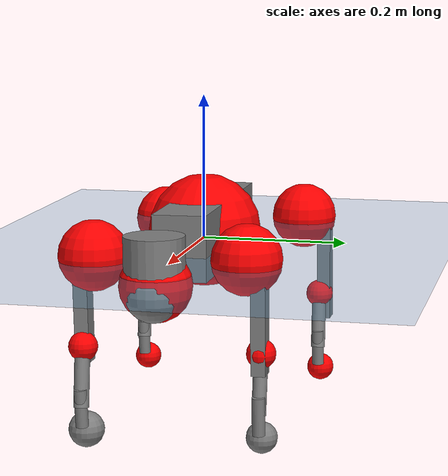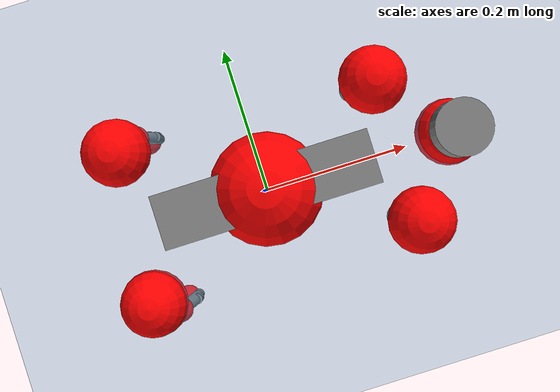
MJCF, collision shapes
<mujoco model="go2">
  <compiler angle="radian" assetdir="assets" balanceinertia="true" inertiafromgeom="false"/>

  <option timestep="0.005" density="1.2" viscosity="2e-05"/>

  <size nkey="1"/>

  <visual>
    <quality shadowsize="8192"/>
    <map shadowclip="0.5"/>
  </visual>

  <default>
    <default class="/">
      <geom contype="0" conaffinity="0" group="1" solref="-1000 -80"/>
      <site size="0.01 0.005 0.005" group="5"/>
      <general forcelimited="true" biastype="affine" gainprm="20" biasprm="0 -20 -0.5"/>
      <default class="go2">
        <joint armature="0.01" damping="0.01" frictionloss="0.2"/>
        <geom condim="1" margin="0.001"/>
        <default class="visual">
          <geom type="mesh" group="2"/>
        </default>
        <default class="collision">
          <geom group="3"/>
          <default class="foot">
            <geom size="0.022 0 0" condim="6" priority="1" friction="0.8 0.02 0.01" solimp="0.015 1 0.022"/>
          </default>
        </default>
        <default class="reward_collision_sphere">
          <geom group="5" rgba="1 0 0 1"/>
        </default>
      </default>
    </default>
  </default>

  <asset>
    <texture type="skybox" colorspace="auto" name="//unnamed_texture_0" builtin="gradient" rgb1="0.95 0.95 0.95" rgb2="0.95 0.95 0.95" width="100" height="600"/>
    <texture type="2d" colorspace="auto" name="texplane" builtin="checker" rgb1="0.345 0.575 0.748" rgb2="0.345 0.575 0.748" markrgb="1 1 1" width="512" height="512"/>
    <material name="MatPlane" class="/" texture="texplane" texuniform="true" texrepeat="2 2" specular="0.9"/>
    <material name="metal" class="/" rgba="0.9 0.95 0.95 1"/>
    <material name="black" class="/" rgba="0 0 0 1"/>
    <material name="white" class="/"/>
    <material name="gray" class="/" rgba="0.671705 0.692426 0.77427 1"/>
    <mesh name="base_0" class="/" file="base_0.obj"/>
    <mesh name="base_1" class="/" file="base_1.obj"/>
    <mesh name="base_2" class="/" file="base_2.obj"/>
    <mesh name="base_3" class="/" file="base_3.obj"/>
    <mesh name="base_4" class="/" file="base_4.obj"/>
    <mesh name="hip_0" class="/" file="hip_0.obj"/>
    <mesh name="hip_1" class="/" file="hip_1.obj"/>
    <mesh name="thigh_0" class="/" file="thigh_0.obj"/>
    <mesh name="thigh_1" class="/" file="thigh_1.obj"/>
    <mesh name="thigh_mirror_0" class="/" file="thigh_mirror_0.obj"/>
    <mesh name="thigh_mirror_1" class="/" file="thigh_mirror_1.obj"/>
    <mesh name="calf_0" class="/" file="calf_0.obj"/>
    <mesh name="calf_1" class="/" file="calf_1.obj"/>
    <mesh name="calf_mirror_0" class="/" file="calf_mirror_0.obj"/>
    <mesh name="calf_mirror_1" class="/" file="calf_mirror_1.obj"/>
    <mesh name="foot" class="/" file="foot.obj"/>
  </asset>

  <worldbody>
    <geom name="floor" class="/" size="100 100 0.125" type="plane" group="0" material="MatPlane"/>
    <light name="toplight_shadow" class="/" pos="0 0 5" dir="0.0990148 0.0990148 -0.990148" type="directional" ambient="0.04 0.04 0.04" diffuse="0.55 0.55 0.55" specular="0.12 0.12 0.12"/>
    <light name="toplight_fill" class="/" pos="0 0 5" dir="0.0990148 0.0990148 -0.990148" type="directional" castshadow="false" ambient="0.04 0.04 0.04" diffuse="0.3 0.3 0.3" specular="0.08 0.08 0.08"/>
    <body name="trunk" childclass="go2" pos="0.000202839 0.00142017 0.0117328" quat="0.999986 0.00447244 0.00289866 0.000565503">
      <inertial pos="0.0212283 -0.00884781 -0.00259246" quat="0.0146493 0.740104 0.0281206 0.671745" mass="3.10344" diaginertia="0.0697654 0.0427596 0.000893611"/>
      <joint name="//unnamed_joint_0" type="free" armature="0" damping="0" frictionloss="0"/>
      <geom name="//unnamed_geom_1" class="visual" material="black" mesh="base_0"/>
      <geom name="//unnamed_geom_2" class="visual" material="black" mesh="base_1"/>
      <geom name="//unnamed_geom_3" class="visual" material="black" mesh="base_2"/>
      <geom name="//unnamed_geom_4" class="visual" material="white" mesh="base_3"/>
      <geom name="//unnamed_geom_5" class="visual" material="gray" mesh="base_4"/>
      <geom name="trunk_1" class="collision" size="0.147736 0.0367181 0.0447686" type="box"/>
      <geom name="trunk_2" class="collision" size="0.0392707 0.0353436" pos="0.270862 0 0.00531765" type="cylinder"/>
      <geom name="trunk_3" class="collision" size="0.0369145" pos="0.278466 0 -0.0319059"/>
      <geom name="//unnamed_geom_9" class="reward_collision_sphere" size="0.0785414"/>
      <geom name="//unnamed_geom_10" class="reward_collision_sphere" size="0.0471248" pos="0.26611 0 -0.0239294"/>
      <site name="imu" pos="-0.0281552 -0.0292513 0.0641278" size="0.00785414"/>
      <camera name="track" pos="0 -1.74816 0" quat="0.707107 0.707107 0 0" mode="trackcom"/>
      <camera name="ego_camera" pos="0.296523 0 0.0239294" quat="-0.5 -0.5 0.5 0.5"/>
      <body name="FL_hip" pos="0.182683 0.0378166 -0.00396719" quat="1 6.88464e-05 -2.05142e-05 9.50945e-05">
        <inertial pos="0.00508577 0.00412481 0.0112872" quat="0.469469 0.546723 0.491979 0.488518" mass="0.350616" diaginertia="0.00066335 0.000334485 2.1992e-05"/>
        <joint name="FL_hip_joint" pos="0 0 0" axis="0.998851 -0.0461299 -0.0129706" stiffness="0.0389432" range="-1.06736 0.941686" armature="0.00758506" damping="0.0463493" frictionloss="0.116245"/>
        <geom name="//unnamed_geom_11" class="visual" material="metal" mesh="hip_0"/>
        <geom name="//unnamed_geom_12" class="visual" material="gray" mesh="hip_1"/>
        <geom name="//unnamed_geom_13" class="collision" size="0.036129 0.0157083" pos="0 0.0699266 0" quat="0.707107 0.707107 0 0" type="cylinder"/>
        <geom name="//unnamed_geom_14" class="reward_collision_sphere" size="0.0471248" pos="0 0.0611857 0"/>
        <body name="FL_thigh" pos="0.00866465 0.0794203 -0.00862668" quat="1 -0.000599247 7.34971e-05 -0.000664243">
          <inertial pos="-0.00176643 -0.0181773 -0.0185464" quat="0.823384 0.0885474 -0.014249 0.560353" mass="0.614615" diaginertia="0.00510495 0.00333278 4.64088e-05"/>
          <joint name="FL_thigh_joint" pos="0 0 0" axis="-0.00482978 0.999981 0.0039047" stiffness="0.00854254" range="-1.46057 3.52215" armature="0.0104599" damping="0" frictionloss="0.157197"/>
          <geom name="//unnamed_geom_15" class="visual" material="metal" mesh="thigh_0"/>
          <geom name="//unnamed_geom_16" class="visual" material="gray" mesh="thigh_1"/>
          <geom name="//unnamed_geom_17" class="collision" size="0.0836466 0.00962132 0.013352" pos="0 0 -0.056633" quat="0.707107 0 0.707107 0" type="box"/>
          <body name="FL_calf" pos="-0.00401734 0.000957377 -0.113583" quat="1 -0.000201737 -1.09814e-05 -0.000179084">
            <inertial pos="0.0188624 0.0105205 -0.0756361" quat="0.714187 0.00469244 -0.00754318 0.699899" mass="0.117008" diaginertia="0.00128246 0.000738731 2.17753e-06"/>
            <joint name="FL_calf_joint" pos="0 0 0" axis="-0.0157439 0.999847 0.00756602" stiffness="0.0219012" range="-2.4703 -0.954667" armature="0.00892786" damping="0.0139049" frictionloss="0.0618325"/>
            <geom name="//unnamed_geom_18" class="visual" material="gray" mesh="calf_0"/>
            <geom name="//unnamed_geom_19" class="visual" material="black" mesh="calf_1"/>
            <geom name="FL_calf0" class="collision" size="0.00942497 0.0471248" pos="0.00760316 0 -0.0319059" quat="0.994493 0 -0.104807 0" type="cylinder"/>
            <geom name="//unnamed_geom_21" class="collision" size="0.00863955 0.025526" pos="0.0190079 0 -0.0787013" quat="0.999688 0 0.0249974 0" type="cylinder"/>
            <geom name="//unnamed_geom_22" class="visual" pos="0 0 -0.113266" quat="1 0 0 0" material="black" mesh="foot"/>
            <geom name="FL_foot" class="foot" size="0.0209609" pos="-0.00190079 0 -0.113266"/>
            <geom name="//unnamed_geom_24" class="reward_collision_sphere" size="0.0196354"/>
            <geom name="//unnamed_geom_25" class="reward_collision_sphere" size="0.0196354" pos="-0.00190079 0 -0.113266"/>
            <site name="FL_foot" class="foot" pos="-0.00190079 0 -0.113266" size="0.00785414"/>
          </body>
        </body>
      </body>
      <body name="FR_hip" pos="0.189454 -0.0431111 -0.00309716" quat="0.999982 0.00444021 -0.000906469 0.00404891">
        <inertial pos="-0.00147581 -0.00246221 0.0025343" quat="0.504381 0.471644 0.543803 0.476896" mass="0.287961" diaginertia="0.000701523 0.000307138 2.10317e-05"/>
        <joint name="FR_hip_joint" pos="0 0 0" axis="0.999641 -0.00682305 0.0258955" stiffness="0.0454625" range="-0.814874 1.15119" armature="0.00727684" damping="0.0397265" frictionloss="0.105179"/>
        <geom name="//unnamed_geom_26" class="visual" pos="0 2.98212e-09 1.27909e-07" quat="4.63268e-05 1 0 0" material="metal" mesh="hip_0"/>
        <geom name="//unnamed_geom_27" class="visual" pos="0 4.83438e-09 -3.16369e-07" quat="4.63268e-05 1 0 0" material="gray" mesh="hip_1"/>
        <geom name="//unnamed_geom_28" class="collision" size="0.036129 0.0157083" pos="0 -0.0699266 0" quat="0.707107 0.707107 0 0" type="cylinder"/>
        <geom name="//unnamed_geom_29" class="reward_collision_sphere" size="0.0471248" pos="0 -0.0611857 0"/>
        <body name="FR_thigh" pos="0.00211748 -0.0772327 -0.00179238" quat="0.999998 0.00178237 0.000972443 -0.000557595">
          <inertial pos="0.00152671 0.0217385 -0.0148766" quat="0.550757 -0.0288595 0.0795051 0.830369" mass="0.498695" diaginertia="0.00467239 0.0032886 3.52617e-05"/>
          <joint name="FR_thigh_joint" pos="0 0 0" axis="0.000362934 -0.999992 -0.00386989" range="-3.50325 1.68423" armature="0.00969639" damping="0.0675951" frictionloss="0.223518"/>
          <geom name="//unnamed_geom_30" class="visual" material="metal" mesh="thigh_mirror_0"/>
          <geom name="//unnamed_geom_31" class="visual" material="gray" mesh="thigh_mirror_1"/>
          <geom name="//unnamed_geom_32" class="collision" size="0.0836466 0.00962132 0.013352" pos="0 0 -0.056633" quat="0.707107 0 0.707107 0" type="box"/>
          <body name="FR_calf" pos="0.0115659 0.00143561 -0.117835" quat="1 -8.97242e-05 -0.000261742 0.000471217">
            <inertial pos="0.00787109 0.0109266 -0.0837167" quat="0.709571 -0.0657301 0.00311593 0.701555" mass="0.132781" diaginertia="0.00128843 0.000741868 2.76236e-06"/>
            <joint name="FR_calf_joint" pos="0 0 0" axis="0.00606379 -0.999849 -0.0162922" stiffness="0.00553487" range="0.810049 2.72219" armature="0.00773161" damping="0.0417684" frictionloss="0.194423"/>
            <geom name="//unnamed_geom_33" class="visual" material="gray" mesh="calf_mirror_0"/>
            <geom name="//unnamed_geom_34" class="visual" material="black" mesh="calf_mirror_1"/>
            <geom name="FR_calf0" class="collision" size="0.0102104 0.0471248" pos="0.00950395 0 -0.0319059" quat="0.995004 0 -0.0998334 0" type="cylinder"/>
            <geom name="//unnamed_geom_36" class="collision" size="0.00863955 0.025526" pos="0.0190079 0 -0.0787013" quat="0.999688 0 0.0249974 0" type="cylinder"/>
            <geom name="//unnamed_geom_37" class="visual" pos="0 0 -0.113266" quat="1 0 0 0" material="black" mesh="foot"/>
            <geom name="FR_foot" class="foot" size="0.0241558" pos="-0.00190079 0 -0.113266"/>
            <geom name="//unnamed_geom_39" class="reward_collision_sphere" size="0.0196354"/>
            <geom name="//unnamed_geom_40" class="reward_collision_sphere" size="0.0196354" pos="-0.00190079 0 -0.113266"/>
            <site name="FR_foot" class="foot" pos="-0.00190079 0 -0.113266" size="0.00785414"/>
          </body>
        </body>
      </body>
      <body name="RL_hip" pos="-0.181889 0.047599 -0.00781015" quat="0.999999 -0.000739829 -0.000513451 0.00091388">
        <inertial pos="0.00762169 0.011888 0.0117182" quat="0.501067 0.512355 0.487287 0.498974" mass="0.350199" diaginertia="0.000778025 0.000311267 2.4125e-05"/>
        <joint name="RL_hip_joint" pos="0 0 0" axis="-0.998861 -0.0457562 0.0135143" range="-0.854147 0.837355" armature="0.00409855" damping="0.000650545" frictionloss="0.148781"/>
        <geom name="//unnamed_geom_41" class="visual" pos="-3.64692e-09 0 -7.14881e-07" quat="4.63268e-05 0 1 0" material="metal" mesh="hip_0"/>
        <geom name="//unnamed_geom_42" class="visual" pos="-5.9121e-09 0 -6.33998e-07" quat="4.63268e-05 0 1 0" material="gray" mesh="hip_1"/>
        <geom name="//unnamed_geom_43" class="collision" size="0.036129 0.0157083" pos="0 0.0699266 0" quat="0.707107 0.707107 0 0" type="cylinder"/>
        <geom name="//unnamed_geom_44" class="reward_collision_sphere" size="0.0471248" pos="0 0.0611857 0"/>
        <body name="RL_thigh" pos="0.00260204 0.0928986 -0.0117328" quat="0.999993 0.00173967 -0.0034108 6.88226e-05">
          <inertial pos="-0.0160277 -0.0118221 -0.00505128" quat="0.829426 0.0847621 -0.0199695 0.551788" mass="0.459936" diaginertia="0.00334561 0.002495 2.85186e-05"/>
          <joint name="RL_thigh_joint" pos="0 0 0" axis="0.0373181 0.997979 0.0514265" range="-0.392772 4.55704" armature="0.00783767" damping="0.0679163" frictionloss="0.123357"/>
          <geom name="//unnamed_geom_45" class="visual" material="metal" mesh="thigh_0"/>
          <geom name="//unnamed_geom_46" class="visual" material="gray" mesh="thigh_1"/>
          <geom name="//unnamed_geom_47" class="collision" size="0.0836466 0.00962132 0.013352" pos="0 0 -0.056633" quat="0.707107 0 0.707107 0" type="box"/>
          <body name="RL_calf" pos="0.00657197 -0.00682571 -0.103667" quat="0.999991 0.00388606 0.00153335 -0.000209614">
            <inertial pos="0.0173594 -0.00769381 -0.0632187" quat="0.73743 0.0181827 0.0240314 0.674751" mass="0.129863" diaginertia="0.0012739 0.000867393 2.34647e-06"/>
            <joint name="RL_calf_joint" pos="0 0 0" axis="0.00773415 0.99992 -0.00999739" stiffness="0.00182021" range="-2.7336 -0.580922" armature="0.00395586" damping="0.0641437" frictionloss="0.150082"/>
            <geom name="//unnamed_geom_48" class="visual" material="gray" mesh="calf_0"/>
            <geom name="//unnamed_geom_49" class="visual" material="black" mesh="calf_1"/>
            <geom name="RL_calf0" class="collision" size="0.0102104 0.0471248" pos="0.00950395 0 -0.0319059" quat="0.995004 0 -0.0998334 0" type="cylinder"/>
            <geom name="//unnamed_geom_51" class="collision" size="0.00863955 0.025526" pos="0.0190079 0 -0.0787013" quat="0.999688 0 0.0249974 0" type="cylinder"/>
            <geom name="//unnamed_geom_52" class="visual" pos="0 0 -0.113266" quat="1 0 0 0" material="black" mesh="foot"/>
            <geom name="RL_foot" class="foot" size="0.0152774" pos="-0.00190079 0 -0.113266"/>
            <geom name="//unnamed_geom_54" class="reward_collision_sphere" size="0.0196354"/>
            <geom name="//unnamed_geom_55" class="reward_collision_sphere" size="0.0196354" pos="-0.00190079 0 -0.113266"/>
            <site name="RL_foot" class="foot" pos="-0.00190079 0 -0.113266" size="0.00785414"/>
          </body>
        </body>
      </body>
      <body name="RR_hip" pos="-0.19654 -0.0440217 -0.0192853" quat="1 -0.000108535 -0.000693299 -0.000651633">
        <inertial pos="0.0138729 0.0044007 -0.00341605" quat="0.49895 0.520629 0.515986 0.462334" mass="0.325699" diaginertia="0.000504297 0.000264616 1.62732e-05"/>
        <joint name="RR_hip_joint" pos="0 0 0" axis="-0.997941 0.063318 0.0102017" stiffness="0.0039951" range="-0.958125 1.0384" armature="0.007581" damping="0.0213339" frictionloss="0.058121"/>
        <geom name="//unnamed_geom_56" class="visual" pos="3.64428e-09 2.98212e-09 -8.4279e-07" quat="2.14617e-09 4.63268e-05 4.63268e-05 -1" material="metal" mesh="hip_0"/>
        <geom name="//unnamed_geom_57" class="visual" pos="5.91863e-09 4.83438e-09 -3.17629e-07" quat="2.14617e-09 4.63268e-05 4.63268e-05 -1" material="gray" mesh="hip_1"/>
        <geom name="//unnamed_geom_58" class="collision" size="0.036129 0.0157083" pos="0 -0.0699266 0" quat="0.707107 0.707107 0 0" type="cylinder"/>
        <geom name="//unnamed_geom_59" class="reward_collision_sphere" size="0.0471248" pos="0 -0.0611857 0"/>
        <body name="RR_thigh" pos="-0.000418459 -0.0865393 0.00195566" quat="1 4.32901e-06 0.000219433 0.000146828">
          <inertial pos="-0.00812664 0.024754 -0.00689288" quat="0.536724 0.00863542 0.0824173 0.839679" mass="0.663888" diaginertia="0.0041917 0.00301122 3.78421e-05"/>
          <joint name="RR_thigh_joint" pos="0 0 0" axis="0.0183511 -0.999801 -0.00788106" range="-4.5187 0.688285" armature="0.00874171" damping="0.0186337" frictionloss="0.171461"/>
          <geom name="//unnamed_geom_60" class="visual" material="metal" mesh="thigh_mirror_0"/>
          <geom name="//unnamed_geom_61" class="visual" material="gray" mesh="thigh_mirror_1"/>
          <geom name="//unnamed_geom_62" class="collision" size="0.0836466 0.00962132 0.013352" pos="0 0 -0.056633" quat="0.707107 0 0.707107 0" type="box"/>
          <body name="RR_calf" pos="0.0109555 -0.00835623 -0.105651" quat="0.999979 0.00578207 0.00174141 0.00226535">
            <inertial pos="0.00327209 0.000372364 -0.0775244" quat="0.734916 -0.00247683 -0.0238511 0.677734" mass="0.109091" diaginertia="0.00107153 0.000644796 2.36768e-06"/>
            <joint name="RR_calf_joint" pos="0 0 0" axis="-0.0184665 -0.998149 -0.057946" stiffness="0.0553258" range="0.645771 2.75541" armature="0.00844122" damping="0.0578102" frictionloss="0.172506"/>
            <geom name="//unnamed_geom_63" class="visual" material="gray" mesh="calf_mirror_0"/>
            <geom name="//unnamed_geom_64" class="visual" material="black" mesh="calf_mirror_1"/>
            <geom name="RR_calf0" class="collision" size="0.0102104 0.0471248" pos="0.00950395 0 -0.0319059" quat="0.995004 0 -0.0998334 0" type="cylinder"/>
            <geom name="//unnamed_geom_66" class="collision" size="0.00863955 0.025526" pos="0.0190079 0 -0.0787013" quat="0.999688 0 0.0249974 0" type="cylinder"/>
            <geom name="//unnamed_geom_67" class="visual" pos="0 0 -0.113266" quat="1 0 0 0" material="black" mesh="foot"/>
            <geom name="RR_foot" class="foot" size="0.0186877" pos="-0.00190079 0 -0.113266"/>
            <geom name="//unnamed_geom_69" class="reward_collision_sphere" size="0.0196354"/>
            <geom name="//unnamed_geom_70" class="reward_collision_sphere" size="0.0196354" pos="-0.00190079 0 -0.113266"/>
            <site name="RR_foot" class="foot" pos="-0.00190079 0 -0.113266" size="0.00785414"/>
          </body>
        </body>
      </body>
    </body>
  </worldbody>

  <contact>
    <pair class="/" geom1="floor" geom2="FL_foot" name="//unnamed_contact_0"/>
    <pair class="/" geom1="floor" geom2="FR_foot" name="//unnamed_contact_1"/>
    <pair class="/" geom1="floor" geom2="RL_foot" name="//unnamed_contact_2"/>
    <pair class="/" geom1="floor" geom2="RR_foot" name="//unnamed_contact_3"/>
  </contact>

  <actuator>
    <general name="FL_hip" class="/" joint="FL_hip_joint" forcerange="-17.2628 17.2628" gainprm="15.359" biasprm="0 -15.359 -0.41109"/>
    <general name="FL_thigh" class="/" joint="FL_thigh_joint" forcerange="-18.1754 18.1754" gainprm="15.359" biasprm="0 -15.359 -0.41109"/>
    <general name="FL_calf" class="/" joint="FL_calf_joint" forcerange="-28.1399 28.1399" gainprm="15.359" biasprm="0 -15.359 -0.41109"/>
    <general name="FR_hip" class="/" joint="FR_hip_joint" forcerange="-18.8442 18.8442" gainprm="15.359" biasprm="0 -15.359 -0.41109"/>
    <general name="FR_thigh" class="/" joint="FR_thigh_joint" forcerange="-14.875 14.875" gainprm="15.359" biasprm="0 -15.359 -0.41109"/>
    <general name="FR_calf" class="/" joint="FR_calf_joint" forcerange="-33.5832 33.5832" gainprm="15.359" biasprm="0 -15.359 -0.41109"/>
    <general name="RL_hip" class="/" joint="RL_hip_joint" forcerange="-17.9557 17.9557" gainprm="15.359" biasprm="0 -15.359 -0.41109"/>
    <general name="RL_thigh" class="/" joint="RL_thigh_joint" forcerange="-26.7111 26.7111" gainprm="15.359" biasprm="0 -15.359 -0.41109"/>
    <general name="RL_calf" class="/" joint="RL_calf_joint" forcerange="-22.0328 22.0328" gainprm="15.359" biasprm="0 -15.359 -0.41109"/>
    <general name="RR_hip" class="/" joint="RR_hip_joint" forcerange="-18.7976 18.7976" gainprm="15.359" biasprm="0 -15.359 -0.41109"/>
    <general name="RR_thigh" class="/" joint="RR_thigh_joint" forcerange="-20.7027 20.7027" gainprm="15.359" biasprm="0 -15.359 -0.41109"/>
    <general name="RR_calf" class="/" joint="RR_calf_joint" forcerange="-27.6036 27.6036" gainprm="15.359" biasprm="0 -15.359 -0.41109"/>
  </actuator>

  <sensor>
    <gyro site="imu" name="imu_angular_velocity"/>
    <velocimeter site="imu" name="imu_linear_velocity"/>
    <framelinvel objtype="site" objname="FL_foot" name="FL_foot_global_linear_velocity"/>
    <framelinvel objtype="site" objname="FR_foot" name="FR_foot_global_linear_velocity"/>
    <framelinvel objtype="site" objname="RL_foot" name="RL_foot_global_linear_velocity"/>
    <framelinvel objtype="site" objname="RR_foot" name="RR_foot_global_linear_velocity"/>
  </sensor>

  <keyframe>
    <key name="home" qpos="0 0 0.325 1 0 0 0 0.1 0.8 -1.5 -0.1 -0.8 1.5 -0.1 0.8 -1.5 0.1 -0.8 1.5"/>
  </keyframe>
</mujoco>
